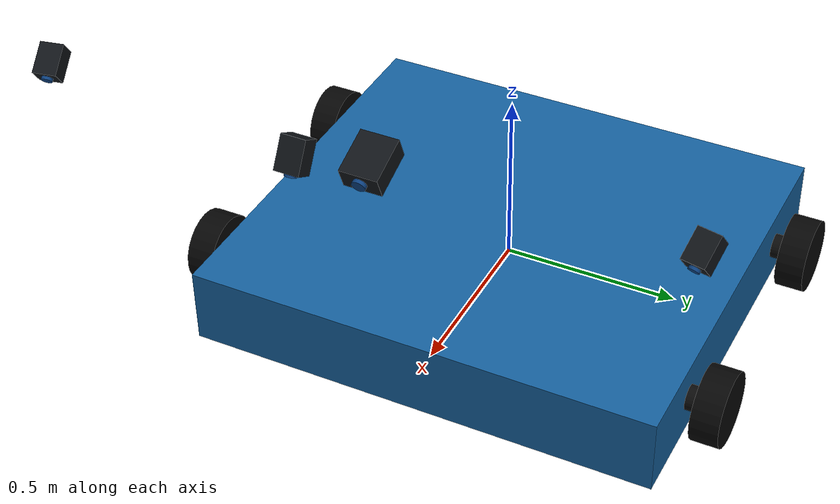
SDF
<?xml version="1.0" ?>
<sdf version='1.7'>

  <model name='gazebo_train'>
  <pose>0.0 0.0 0.0 0.0 0.0 0.0</pose>
  <self_collide>false</self_collide>

    <link name='base_footprint'></link>
    <link name="base_link">
      <gravity>1</gravity>
      <self_collide>0</self_collide>
      <kinematic>0</kinematic>
      <enable_wind>0</enable_wind>
      <inertial>
        <pose>0 0 0 0 0 0</pose>
        <mass>3</mass>
        <inertia>
          <ixx>0.6</ixx>
          <ixy>0</ixy>
          <ixz>0</ixz>
          <iyy>0.2</iyy>
          <iyz>0</iyz>
          <izz>0.6</izz>
        </inertia>
      </inertial>
      <!-- Box collision keeps chassis contact stable without external meshes. -->
      <collision name='base_footprint_fixed_joint_lump__base_link_collision'>
        <pose>0 0 0 0 0 0</pose>
        <geometry>
          <box>
            <size>1.20 1.35 0.20</size>
          </box>
        </geometry>
      </collision>
      <!-- The simple body matches the TF model and marks forward along +X. -->
      <visual name='base_footprint_fixed_joint_lump__base_link_visual'>
        <pose>0 0 0 0 0 0</pose>
        <geometry>
          <box>
            <size>1.20 1.35 0.22</size>
          </box>
        </geometry>
        <material>
          <ambient>0.08 0.38 0.62 1</ambient>
          <diffuse>0.08 0.38 0.62 1</diffuse>
        </material>
      </visual>
      <visual name='front_axle_visual'>
        <pose>0.35 0 0 1.5708 0 0</pose>
        <geometry>
          <cylinder>
            <radius>0.035</radius>
            <length>1.505</length>
          </cylinder>
        </geometry>
        <material>
          <ambient>0.04 0.04 0.04 1</ambient>
          <diffuse>0.04 0.04 0.04 1</diffuse>
        </material>
      </visual>
      <visual name='rear_axle_visual'>
        <pose>-0.35 0 0 1.5708 0 0</pose>
        <geometry>
          <cylinder>
            <radius>0.035</radius>
            <length>1.505</length>
          </cylinder>
        </geometry>
        <material>
          <ambient>0.04 0.04 0.04 1</ambient>
          <diffuse>0.04 0.04 0.04 1</diffuse>
        </material>
      </visual>
      <!--
        修改前：没有明显的车头方向标记。
        修改后：绿色前向标记表示 base_link 的 +X 方向，也是 Nav2/cmd_vel 的前进方向。
      -->
      <visual name='front_marker_visual'>
        <pose>0.34 0 -0.08 0 0 0</pose>
        <geometry>
          <box>
            <size>0.08 0.28 0.03</size>
          </box>
        </geometry>
        <material>
          <ambient>0.05 0.8 0.35 1</ambient>
          <diffuse>0.05 0.8 0.35 1</diffuse>
        </material>
      </visual>
    </link>

    <joint name="base_joint" type="fixed">
      <parent>base_footprint</parent>
      <child>base_link</child>
      <pose>0.0 0.0 0.3 0 0 0</pose>
    </joint>

    <link name="laser_link">
      <sensor name="hls_lfcd_lds" type="ray">
        <always_on>true</always_on>
        <visualize>0</visualize>
        <pose>0 0 0.74 0 0 0</pose>
        <update_rate>10</update_rate>
        <ray>
          <scan>
            <horizontal>
              <samples>1024</samples>
              <resolution>1.000000</resolution>
              <min_angle>0.000000</min_angle>
              <max_angle>6.280000</max_angle>
            </horizontal>
          </scan>
          <range>
            <min>0.5</min>
            <max>120</max>
            <resolution>0.0010000</resolution>
          </range>
          <noise>
            <type>gaussian</type>
            <mean>0.0</mean>
            <stddev>0.01</stddev>
          </noise>
        </ray>
        <plugin name="train_laserscan" filename="libgazebo_ros_ray_sensor.so">
          <ros>
            <remapping>~/out:=scan</remapping>
          </ros>
          <output_type>sensor_msgs/LaserScan</output_type>
          <frame_name>laser_link</frame_name>
        </plugin>
      </sensor>
    </link>

    <joint name="lidar_joint" type="fixed">
      <parent>base_link</parent>
      <child>laser_link</child>
      <pose>0 0 0.74 0 0 3.14159</pose>
      <axis>
        <xyz>0 0 1</xyz>
      </axis>
    </joint>

    <link name="camera_link">
      <!-- Positive pitch looks down along the forward track in Gazebo Classic. -->
      <pose relative_to="base_link">0.78 0 0.82 0 0.38 0</pose>
      <inertial>
        <pose> 0 0 0 0 0 0</pose>
        <inertia>
          <ixx>0.0001</ixx>
          <ixy>0.000</ixy>
          <ixz>0.000</ixz>
          <iyy>0.0001</iyy>
          <iyz>0.000</iyz>
          <izz>0.0001</izz>
        </inertia>
        <mass>0.001</mass>
      </inertial>
      <visual name="camera_housing">
        <geometry><box><size>0.12 0.10 0.06</size></box></geometry>
        <material>
          <ambient>0.025 0.030 0.035 1</ambient>
          <diffuse>0.060 0.075 0.090 1</diffuse>
        </material>
      </visual>
      <visual name="camera_lens_visual">
        <pose>0.064 0 0 0 1.5708 0</pose>
        <geometry><cylinder><radius>0.018</radius><length>0.012</length></cylinder></geometry>
        <material>
          <ambient>0.02 0.10 0.20 1</ambient>
          <diffuse>0.04 0.24 0.48 1</diffuse>
        </material>
      </visual>
    </link>

    <link name="camera_lens_link">
      <pose relative_to="camera_link">0.06 0 0 0 0 0</pose>
      <sensor name="zed2i_depth" type="depth">
        <always_on>1</always_on>
        <visualize>0</visualize>
        <update_rate>10</update_rate>
        <pose>0 0 0 0 0 0</pose>
        <camera name="realsense_depth_camera">
          <horizontal_fov>1.15</horizontal_fov>
          <image>
            <width>1920</width>
            <height>1080</height>
          </image>
          <clip>
            <near>0.02</near>
            <far>40</far>
          </clip>
          <noise>
            <type>gaussian</type>
            <mean>0.0</mean>
            <stddev>0.002</stddev>
          </noise>
        </camera>
	  <plugin name="zed2i_depth_driver" filename="libgazebo_ros_camera.so">
	    <ros>
	    </ros>
            <camera_name>zed2i_depth</camera_name>
            <frame_name>camera_lens_link</frame_name>
            <hack_baseline>0.012</hack_baseline>
            <min_depth>0.5</min_depth>
            <max_depth>25</max_depth>
          </plugin>
      </sensor>
    </link>

    <joint name="camera_joint" type="fixed">
      <parent>base_link</parent>
      <child>camera_link</child>
    </joint>

    <joint name="camera_rgb_joint" type="fixed">
      <parent>camera_link</parent>
      <child>camera_lens_link</child>
    </joint>

    <joint name="left_side_camera_joint" type="fixed">
      <parent>base_link</parent>
      <child>left_side_camera_link</child>
    </joint>
    <link name="left_side_camera_link">
      <!-- Oblique view from the left, aimed forward and toward the near rail. -->
      <pose relative_to="base_link">0.85 0.82 0.90 0 0.65 -0.20</pose>
      <inertial>
        <mass>0.01</mass>
        <inertia>
          <ixx>0.00001</ixx><ixy>0</ixy><ixz>0</ixz>
          <iyy>0.00001</iyy><iyz>0</iyz><izz>0.00001</izz>
        </inertia>
      </inertial>
      <visual name="camera_housing">
        <geometry><box><size>0.080 0.060 0.050</size></box></geometry>
        <material>
          <ambient>0.025 0.030 0.035 1</ambient>
          <diffuse>0.060 0.075 0.090 1</diffuse>
        </material>
      </visual>
      <visual name="camera_lens">
        <pose>0.044 0 0 0 1.5708 0</pose>
        <geometry><cylinder><radius>0.014</radius><length>0.008</length></cylinder></geometry>
        <material>
          <ambient>0.02 0.10 0.20 1</ambient>
          <diffuse>0.04 0.24 0.48 1</diffuse>
        </material>
      </visual>
      <sensor name="left_side_camera_sensor" type="camera">
        <always_on>true</always_on>
        <visualize>0</visualize>
        <update_rate>15</update_rate>
        <pose>0.050 0 0 0 0 0</pose>
        <camera name="left_side_camera">
          <horizontal_fov>1.35</horizontal_fov>
          <image>
            <width>640</width>
            <height>360</height>
            <format>R8G8B8</format>
          </image>
          <clip><near>0.05</near><far>30</far></clip>
          <noise><type>gaussian</type><mean>0.0</mean><stddev>0.002</stddev></noise>
        </camera>
        <plugin name="left_side_camera_driver" filename="libgazebo_ros_camera.so">
          <ros><namespace>gazebo_train</namespace></ros>
          <camera_name>left_side</camera_name>
          <frame_name>left_side_camera_link</frame_name>
        </plugin>
      </sensor>
    </link>

    <joint name="right_side_camera_joint" type="fixed">
      <parent>base_link</parent>
      <child>right_side_camera_link</child>
    </joint>
    <link name="right_side_camera_link">
      <!-- Mirror the left mount to observe the right rail from outside. -->
      <pose relative_to="base_link">0.85 -0.82 0.90 0 0.65 0.20</pose>
      <inertial>
        <mass>0.01</mass>
        <inertia>
          <ixx>0.00001</ixx><ixy>0</ixy><ixz>0</ixz>
          <iyy>0.00001</iyy><iyz>0</iyz><izz>0.00001</izz>
        </inertia>
      </inertial>
      <visual name="camera_housing">
        <geometry><box><size>0.080 0.060 0.050</size></box></geometry>
        <material>
          <ambient>0.025 0.030 0.035 1</ambient>
          <diffuse>0.060 0.075 0.090 1</diffuse>
        </material>
      </visual>
      <visual name="camera_lens">
        <pose>0.044 0 0 0 1.5708 0</pose>
        <geometry><cylinder><radius>0.014</radius><length>0.008</length></cylinder></geometry>
        <material>
          <ambient>0.02 0.10 0.20 1</ambient>
          <diffuse>0.04 0.24 0.48 1</diffuse>
        </material>
      </visual>
      <sensor name="right_side_camera_sensor" type="camera">
        <always_on>true</always_on>
        <visualize>0</visualize>
        <update_rate>15</update_rate>
        <pose>0.050 0 0 0 0 0</pose>
        <camera name="right_side_camera">
          <horizontal_fov>1.35</horizontal_fov>
          <image>
            <width>640</width>
            <height>360</height>
            <format>R8G8B8</format>
          </image>
          <clip><near>0.05</near><far>30</far></clip>
          <noise><type>gaussian</type><mean>0.0</mean><stddev>0.002</stddev></noise>
        </camera>
        <plugin name="right_side_camera_driver" filename="libgazebo_ros_camera.so">
          <ros><namespace>gazebo_train</namespace></ros>
          <camera_name>right_side</camera_name>
          <frame_name>right_side_camera_link</frame_name>
        </plugin>
      </sensor>
    </link>

    <joint name="ground_camera_joint" type="fixed">
      <parent>base_link</parent>
      <child>ground_camera_link</child>
    </joint>
    <link name="ground_camera_link">
      <pose relative_to="base_link">1.10 0 1.05 0 1.05 0</pose>
      <inertial>
        <mass>0.01</mass>
        <inertia>
          <ixx>0.00001</ixx><ixy>0</ixy><ixz>0</ixz>
          <iyy>0.00001</iyy><iyz>0</iyz><izz>0.00001</izz>
        </inertia>
      </inertial>
      <visual name="camera_housing">
        <geometry><box><size>0.080 0.060 0.050</size></box></geometry>
        <material>
          <ambient>0.025 0.030 0.035 1</ambient>
          <diffuse>0.060 0.075 0.090 1</diffuse>
        </material>
      </visual>
      <visual name="camera_lens">
        <pose>0.044 0 0 0 1.5708 0</pose>
        <geometry><cylinder><radius>0.014</radius><length>0.008</length></cylinder></geometry>
        <material>
          <ambient>0.02 0.10 0.20 1</ambient>
          <diffuse>0.04 0.24 0.48 1</diffuse>
        </material>
      </visual>
      <sensor name="ground_camera_sensor" type="camera">
        <always_on>true</always_on>
        <visualize>0</visualize>
        <update_rate>15</update_rate>
        <pose>0.050 0 0 0 0 0</pose>
        <camera name="ground_camera">
          <horizontal_fov>1.55</horizontal_fov>
          <image>
            <width>640</width>
            <height>360</height>
            <format>R8G8B8</format>
          </image>
          <clip><near>0.04</near><far>12</far></clip>
          <noise><type>gaussian</type><mean>0.0</mean><stddev>0.002</stddev></noise>
        </camera>
        <plugin name="ground_camera_driver" filename="libgazebo_ros_camera.so">
          <ros><namespace>gazebo_train</namespace></ros>
          <camera_name>ground</camera_name>
          <frame_name>ground_camera_link</frame_name>
        </plugin>
      </sensor>
    </link>

    <link name="imu_link">
      <sensor name="gazebo_train_imu" type="imu">
        <always_on>true</always_on>
        <update_rate>255</update_rate>
        <visualize>true</visualize>
        <imu>
          <angular_velocity>
            <x>
              <noise type="gaussian">
                <mean>2.170023e-03</mean>
                <stddev>1.380934e-3</stddev>
              </noise>
            </x>
            <y>
              <noise type="gaussian">
                <mean>-0.000013</mean>
                <stddev>0.001424</stddev>
              </noise>
            </y>
            <z>
              <noise type="gaussian">
                <mean>0.000012</mean>
                <stddev>0.001386</stddev>
              </noise>
            </z>
          </angular_velocity>
          <linear_acceleration>
            <x>
              <noise type="gaussian">
                <mean>0.069218</mean>     <!--- 0.095342 Sensorwert ohne Gleise -->
                <stddev>0.009161</stddev>
              </noise>
            </x>
            <y>
              <noise type="gaussian">
                <mean>0.165061</mean>
                <stddev>0.008535</stddev>
              </noise>
            </y>
            <z>
              <noise type="gaussian">
                <mean>-1.066594e-02</mean>
                <stddev>0.008694</stddev>
              </noise>
            </z>
          </linear_acceleration>
        </imu>
        <plugin name="train_imu" filename="libgazebo_ros_imu_sensor.so">
          <ros>
            <remapping>~/out:=imu</remapping>
          </ros>
        </plugin>
      </sensor>
    </link>

    <joint name="imu_joint" type="fixed">
      <parent>base_link</parent>
      <child>imu_link</child>
      <pose>0 0 0 0 0 0</pose>
      <axis>
        <xyz>0 0 1</xyz>
      </axis>
    </joint>

    <!--
      修改前：pose=-0.22 0.4 0.1 -1.5708 0 0，axis=1 0 0。
      修改后：后左支撑轮按差速车坐标布置，左右轮在 Y 轴两侧，轮轴沿 Y 方向。
    -->
    <joint name='wheel_left2_joint' type='revolute'>
      <pose relative_to='base_footprint'>-0.35 0.7525 0 0 0 0</pose>
      <parent>base_link</parent>
      <child>wheel_left2_link</child>
      <axis>
        <xyz>0 1 0</xyz>
        <limit>
          <lower>-1e+16</lower>
          <upper>1e+16</upper>
        </limit>
        <dynamics>
          <spring_reference>0</spring_reference>
          <spring_stiffness>0</spring_stiffness>
        </dynamics>
      </axis>
    </joint>
    <link name='wheel_left2_link'>
      <pose relative_to='wheel_left2_joint'>0 0 0 0 -0 0</pose>
      <inertial>
        <pose>0 0 0 0 0 0</pose>
        <mass>0.2</mass>
        <inertia>
          <ixx>0.0007</ixx>
          <ixy>0</ixy>
          <ixz>0</ixz>
          <iyy>0.0011</iyy>
          <iyz>0</iyz>
          <izz>0.0007</izz>
        </inertia>
      </inertial>
      <!-- Cylinder collision provides smooth wheel contact. -->
      <collision name='wheel_left2_link_collision'>
        <pose>0 0 0 -1.5708 0 0</pose>
        <geometry>
          <cylinder>
            <radius>0.105</radius>
            <length>0.08</length>
          </cylinder>
        </geometry>
        <surface>
          <friction>
            <ode>
              <mu>1</mu>
              <mu2>1</mu2>
              <fdir1>0 0 0</fdir1>
              <slip1>0.01</slip1>
              <slip2>0.01</slip2>
            </ode>
            <torsional>
              <coefficient>1</coefficient>
              <patch_radius>0</patch_radius>
              <surface_radius>0</surface_radius>
              <use_patch_radius>1</use_patch_radius>
              <ode>
                <slip>0</slip>
              </ode>
            </torsional>
          </friction>
          <bounce>
            <restitution_coefficient>0</restitution_coefficient>
            <threshold>1e+06</threshold>
          </bounce>
          <contact>
            <collide_without_contact>0</collide_without_contact>
            <collide_without_contact_bitmask>1</collide_without_contact_bitmask>
            <collide_bitmask>1</collide_bitmask>
            <ode>
              <soft_cfm>0</soft_cfm>
              <soft_erp>0.2</soft_erp>
              <!--
                修改前：kp=1e+13, kd=1, max_vel=0.01, min_depth=0。
                修改后：降低接触刚度并增加阻尼，减少轮子和地面高频抽搐。
              -->
              <kp>1e+06</kp>
              <kd>10</kd>
              <max_vel>0.1</max_vel>
              <min_depth>0.001</min_depth>
            </ode>
            <bullet>
              <split_impulse>1</split_impulse>
              <split_impulse_penetration_threshold>-0.01</split_impulse_penetration_threshold>
              <soft_cfm>0</soft_cfm>
              <soft_erp>0.2</soft_erp>
              <kp>1e+06</kp>
              <kd>10</kd>
            </bullet>
          </contact>
        </surface>
      </collision>
      <!--
        修改前：轮子视觉仍使用 left_tire.stl。
        修改后：轮子视觉也用圆柱，保证看到的轮子方向和碰撞体一致。
      -->
      <visual name='wheel_left2_link_visual'>
        <pose>0 0 0 1.5708 -0 0</pose>
        <geometry>
          <cylinder>
            <radius>0.105</radius>
            <length>0.08</length>
          </cylinder>
        </geometry>
        <material>
          <ambient>0.02 0.02 0.02 1</ambient>
          <diffuse>0.02 0.02 0.02 1</diffuse>
        </material>
      </visual>
    </link>
    <!--
      修改前：pose=-0.22 -0.4 0.1 -1.5708 0 0，axis=1 0 0。
      修改后：前左主动轮放在 +X/+Y 位置，diff_drive 插件控制这一侧的轮子。
    -->
    <joint name='wheel_left_joint' type='revolute'>
      <pose relative_to='base_footprint'>0.35 0.7525 0 0 0 0</pose>
      <parent>base_link</parent>
      <child>wheel_left_link</child>
      <axis>
        <xyz>0 1 0</xyz>
        <limit>
          <lower>-1e+16</lower>
          <upper>1e+16</upper>
        </limit>
        <dynamics>
          <spring_reference>0</spring_reference>
          <spring_stiffness>0</spring_stiffness>
        </dynamics>
      </axis>
    </joint>
    <link name='wheel_left_link'>
      <pose relative_to='wheel_left_joint'>0 0 0 0 -0 0</pose>
      <inertial>
        <pose>0 0 0 0 0 0</pose>
        <mass>0.2</mass>
        <inertia>
          <ixx>0.0007</ixx>
          <ixy>0</ixy>
          <ixz>0</ixz>
          <iyy>0.0011</iyy>
          <iyz>0</iyz>
          <izz>0.0007</izz>
        </inertia>
      </inertial>
      <collision name='wheel_left_link_collision'>
        <pose>0 0 0 -1.5708 0 0</pose>
        <geometry>
          <cylinder>
            <radius>0.105</radius>
            <length>0.08</length>
          </cylinder>
        </geometry>
        <surface>
          <friction>
            <ode>
              <mu>1</mu>
              <mu2>1</mu2>
              <fdir1>0 0 0</fdir1>
              <slip1>0.01</slip1>
              <slip2>0.01</slip2>
            </ode>
            <torsional>
              <coefficient>1</coefficient>
              <patch_radius>0</patch_radius>
              <surface_radius>0</surface_radius>
              <use_patch_radius>1</use_patch_radius>
              <ode>
                <slip>0</slip>
              </ode>
            </torsional>
          </friction>
          <bounce>
            <restitution_coefficient>0</restitution_coefficient>
            <threshold>1e+06</threshold>
          </bounce>
          <contact>
            <collide_without_contact>0</collide_without_contact>
            <collide_without_contact_bitmask>1</collide_without_contact_bitmask>
            <collide_bitmask>1</collide_bitmask>
            <ode>
              <soft_cfm>0</soft_cfm>
              <soft_erp>0.2</soft_erp>
              <kp>1e+06</kp>
              <kd>10</kd>
              <max_vel>0.1</max_vel>
              <min_depth>0.001</min_depth>
            </ode>
            <bullet>
              <split_impulse>1</split_impulse>
              <split_impulse_penetration_threshold>-0.01</split_impulse_penetration_threshold>
              <soft_cfm>0</soft_cfm>
              <soft_erp>0.2</soft_erp>
              <kp>1e+06</kp>
              <kd>10</kd>
            </bullet>
          </contact>
        </surface>

      </collision>
      <visual name='wheel_left_link_visual'>
        <pose>0 0 0 1.5708 -0 0</pose>
        <geometry>
          <cylinder>
            <radius>0.105</radius>
            <length>0.08</length>
          </cylinder>
        </geometry>
        <material>
          <ambient>0.02 0.02 0.02 1</ambient>
          <diffuse>0.02 0.02 0.02 1</diffuse>
        </material>
      </visual>
    </link>
    <joint name='wheel_right2_joint' type='revolute'>
      <pose relative_to='base_footprint'>-0.35 -0.7525 0 0 0 0</pose>
      <parent>base_link</parent>
      <child>wheel_right2_link</child>
      <axis>
        <xyz>0 1 0</xyz>
        <limit>
          <lower>-1e+16</lower>
          <upper>1e+16</upper>
        </limit>
        <dynamics>
          <spring_reference>0</spring_reference>
          <spring_stiffness>0</spring_stiffness>
        </dynamics>
      </axis>
    </joint>
    <link name='wheel_right2_link'>
      <pose relative_to='wheel_right2_joint'>0 0 0 0 -0 0</pose>
      <inertial>
        <pose>0 0 0 0 0 0</pose>
        <mass>0.2</mass>
        <inertia>
          <ixx>0.0007</ixx>
          <ixy>0</ixy>
          <ixz>0</ixz>
          <iyy>0.0011</iyy>
          <iyz>0</iyz>
          <izz>0.0007</izz>
        </inertia>
      </inertial>
      <collision name='wheel_right2_link_collision'>
        <pose>0 0 0 -1.5708 0 0</pose>
        <geometry>
          <cylinder>
            <radius>0.105</radius>
            <length>0.08</length>
          </cylinder>
        </geometry>
        <surface>
          <friction>
            <ode>
              <mu>1</mu>
              <mu2>1</mu2>
              <fdir1>0 0 0</fdir1>
              <slip1>0.01</slip1>
              <slip2>0.01</slip2>
            </ode>
            <torsional>
              <coefficient>1</coefficient>
              <patch_radius>0</patch_radius>
              <surface_radius>0</surface_radius>
              <use_patch_radius>1</use_patch_radius>
              <ode>
                <slip>0</slip>
              </ode>
            </torsional>
          </friction>
          <bounce>
            <restitution_coefficient>0</restitution_coefficient>
            <threshold>1e+06</threshold>
          </bounce>
          <contact>
            <collide_without_contact>0</collide_without_contact>
            <collide_without_contact_bitmask>1</collide_without_contact_bitmask>
            <collide_bitmask>1</collide_bitmask>
            <ode>
              <soft_cfm>0</soft_cfm>
              <soft_erp>0.2</soft_erp>
              <kp>1e+06</kp>
              <kd>10</kd>
              <max_vel>0.1</max_vel>
              <min_depth>0.001</min_depth>
            </ode>
            <bullet>
              <split_impulse>1</split_impulse>
              <split_impulse_penetration_threshold>-0.01</split_impulse_penetration_threshold>
              <soft_cfm>0</soft_cfm>
              <soft_erp>0.2</soft_erp>
              <kp>1e+06</kp>
              <kd>10</kd>
            </bullet>
          </contact>
        </surface>

      </collision>
      <visual name='wheel_right2_link_visual'>
        <pose>0 0 0 1.5708 -0 0</pose>
        <geometry>
          <cylinder>
            <radius>0.105</radius>
            <length>0.08</length>
          </cylinder>
        </geometry>
        <material>
          <ambient>0.02 0.02 0.02 1</ambient>
          <diffuse>0.02 0.02 0.02 1</diffuse>
        </material>
      </visual>
    </link>
    <joint name='wheel_right_joint' type='revolute'>
      <pose relative_to='base_footprint'>0.35 -0.7525 0 0 0 0</pose>
      <parent>base_link</parent>
      <child>wheel_right_link</child>
      <axis>
        <xyz>0 1 0</xyz>
        <limit>
          <lower>-1e+16</lower>
          <upper>1e+16</upper>
        </limit>
        <dynamics>
          <spring_reference>0</spring_reference>
          <spring_stiffness>0</spring_stiffness>
        </dynamics>
      </axis>
    </joint>
    <link name='wheel_right_link'>
      <pose relative_to='wheel_right_joint'>0 0 0 0 -0 0</pose>
      <inertial>
        <pose>0 0 0 0 0 0</pose>
        <mass>0.2</mass>
        <inertia>
          <ixx>0.0007</ixx>
          <ixy>0</ixy>
          <ixz>0</ixz>
          <iyy>0.0011</iyy>
          <iyz>0</iyz>
          <izz>0.0007</izz>
        </inertia>
      </inertial>
      <collision name='wheel_right_link_collision'>
        <pose>0 0 0 -1.5708 0 0</pose>
        <geometry>
          <cylinder>
            <radius>0.105</radius>
            <length>0.08</length>
          </cylinder>
        </geometry>
        <surface>
          <friction>
            <ode>
              <mu>1</mu>
              <mu2>1</mu2>
              <fdir1>0 0 0</fdir1>
              <slip1>0.01</slip1>
              <slip2>0.01</slip2>
            </ode>
            <torsional>
              <coefficient>1</coefficient>
              <patch_radius>0</patch_radius>
              <surface_radius>0</surface_radius>
              <use_patch_radius>1</use_patch_radius>
              <ode>
                <slip>0</slip>
              </ode>
            </torsional>
          </friction>
          <bounce>
            <restitution_coefficient>0</restitution_coefficient>
            <threshold>1e+06</threshold>
          </bounce>
          <contact>
            <collide_without_contact>0</collide_without_contact>
            <collide_without_contact_bitmask>1</collide_without_contact_bitmask>
            <collide_bitmask>1</collide_bitmask>
            <ode>
              <soft_cfm>0</soft_cfm>
              <soft_erp>0.2</soft_erp>
              <kp>1e+06</kp>
              <kd>10</kd>
              <max_vel>0.1</max_vel>
              <min_depth>0.001</min_depth>
            </ode>
            <bullet>
              <split_impulse>1</split_impulse>
              <split_impulse_penetration_threshold>-0.01</split_impulse_penetration_threshold>
              <soft_cfm>0</soft_cfm>
              <soft_erp>0.2</soft_erp>
              <kp>1e+06</kp>
              <kd>10</kd>
            </bullet>
          </contact>
        </surface>

      </collision>
      <visual name='wheel_right_link_visual'>
        <pose>0 0 0 1.5708 -0 0</pose>
        <geometry>
          <cylinder>
            <radius>0.105</radius>
            <length>0.08</length>
          </cylinder>
        </geometry>
        <material>
          <ambient>0.02 0.02 0.02 1</ambient>
          <diffuse>0.02 0.02 0.02 1</diffuse>
        </material>
      </visual>
    </link>

    <plugin name="train_planar_move" filename="libgazebo_ros_planar_move.so">
      <ros>
        <remapping>cmd_vel:=cmd_vel_drive</remapping>
        <remapping>odom:=odom</remapping>
      </ros>

      <update_rate>100</update_rate>
      <publish_rate>30</publish_rate>

      <publish_odom>true</publish_odom>
      <publish_odom_tf>true</publish_odom_tf>
      <odometry_frame>odom</odometry_frame>
      <robot_base_frame>base_footprint</robot_base_frame>

      <covariance_x>0.0001</covariance_x>
      <covariance_y>0.0001</covariance_y>
      <covariance_yaw>0.01</covariance_yaw>
    </plugin>

    <plugin name="train_joint_state" filename="libgazebo_ros_joint_state_publisher.so">
      <ros>
        <remapping>~/out:=joint_states</remapping>
      </ros>
      <update_rate>30</update_rate>
      <joint_name>wheel_left_joint</joint_name>
      <joint_name>wheel_left2_joint</joint_name>
      <joint_name>wheel_right_joint</joint_name>
      <joint_name>wheel_right2_joint</joint_name>
    </plugin>

  </model>
</sdf>
